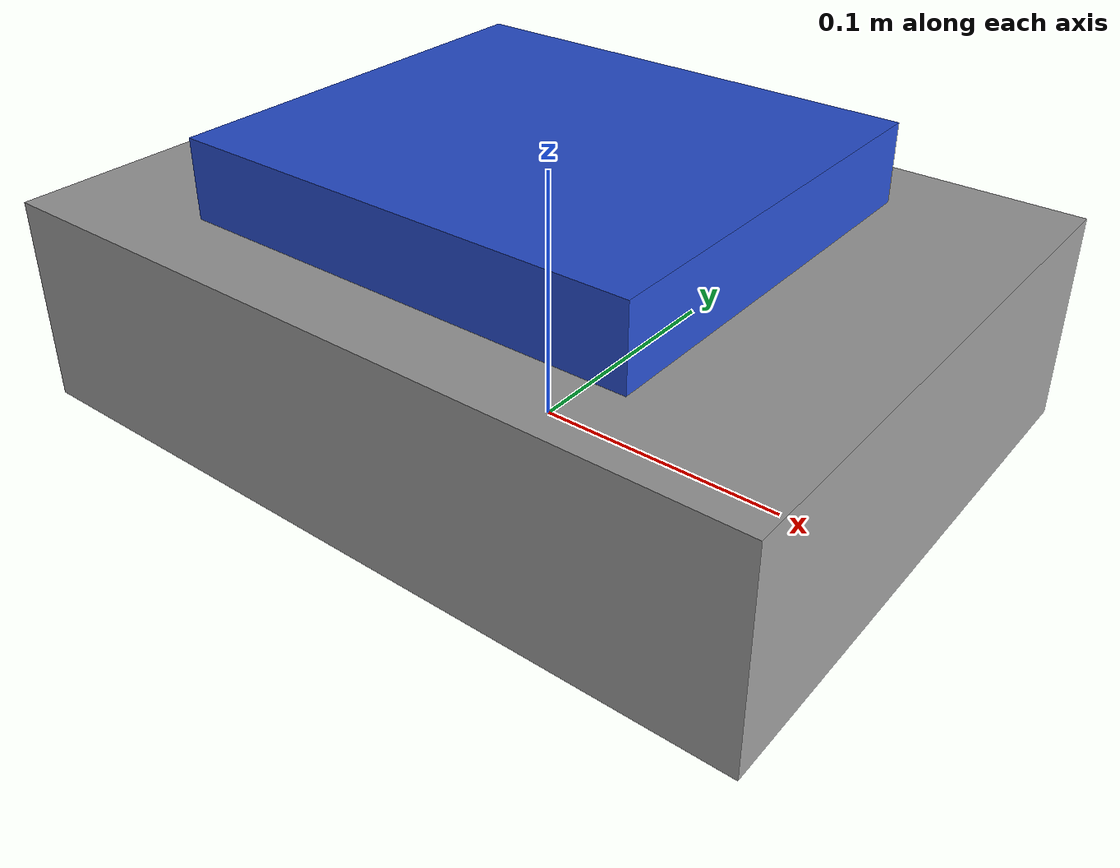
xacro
<?xml version="1.0"?>
<robot xmlns:xacro="http://www.ros.org/wiki/xacro">

  <xacro:property name="chassis_length" value="0.30"/>
  <xacro:property name="chassis_width"  value="0.22"/>
  <xacro:property name="chassis_height" value="0.08"/>
  <xacro:property name="chassis_mass"   value="2.0"/>

  <link name="base_link"/>

  <joint name="base_to_chassis" type="fixed">
    <parent link="base_link"/>
    <child link="chassis_link"/>
    <origin xyz="0 0 0.045" rpy="0 0 0"/>
  </joint>

  <link name="chassis_link">
    <visual>
      <geometry><box size="${chassis_length} ${chassis_width} ${chassis_height}"/></geometry>
      <material name="chassis_grey"/>
    </visual>
    <collision>
      <geometry><box size="${chassis_length} ${chassis_width} ${chassis_height}"/></geometry>
    </collision>
    <inertial>
      <mass value="${chassis_mass}"/>
      <inertia ixx="0.01" ixy="0.0" ixz="0.0" iyy="0.02" iyz="0.0" izz="0.02"/>
    </inertial>
  </link>

  <!-- Payload tray on top -->
  <joint name="chassis_to_tray" type="fixed">
    <parent link="chassis_link"/>
    <child link="tray_link"/>
    <origin xyz="0 0 0.055" rpy="0 0 0"/>
  </joint>

  <link name="tray_link">
    <visual>
      <geometry><box size="0.18 0.16 0.03"/></geometry>
      <material name="sensor_blue"/>
    </visual>
    <collision>
      <geometry><box size="0.18 0.16 0.03"/></geometry>
    </collision>
    <inertial>
      <mass value="0.2"/>
      <inertia ixx="0.0005" ixy="0.0" ixz="0.0" iyy="0.0005" iyz="0.0" izz="0.0005"/>
    </inertial>
  </link>

</robot>
